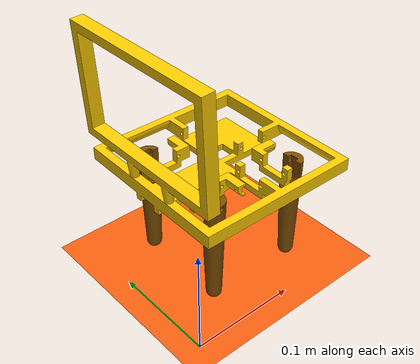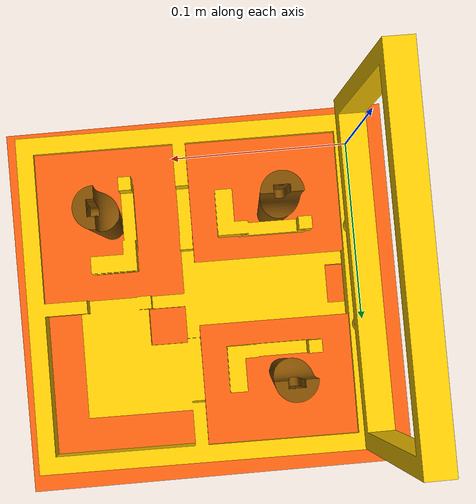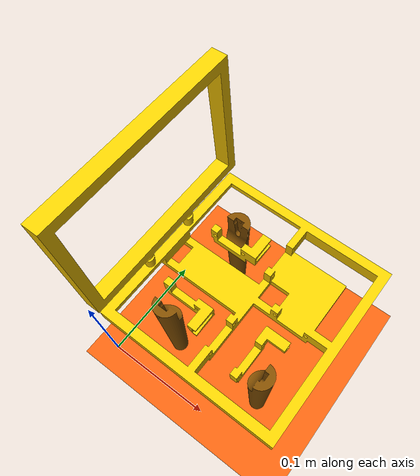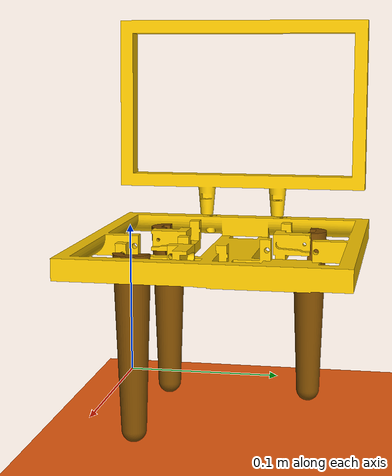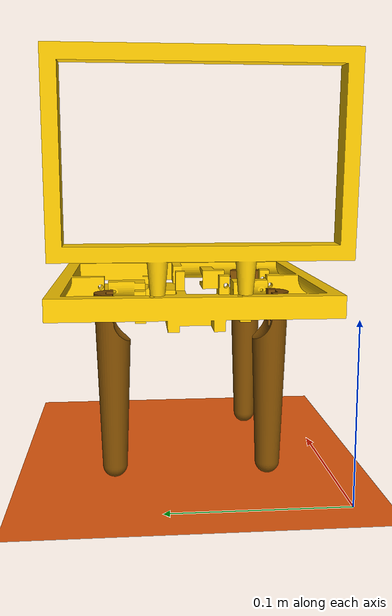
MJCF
<mujoco model="chair">
  <default>
    <joint armature="0.001" limited="true"/>
    <geom condim="3" density="175.5" margin="0.01" rgba="0.97 0.38 0.06 1" contype="0" conaffinity="1"/>
  </default>

  <compiler inertiafromgeom="true" angle="radian"/>

  <option timestep="0.016" iterations="50" tolerance="1e-10" solver="Newton" jacobian="dense" cone="pyramidal"/>
	<option noslip_iterations="3"/>

  <size nconmax="50" njmax="200" nstack="10000"/>
  <visual>
      <map force="0.1" zfar="30"/>
      <rgba haze="0.15 0.25 0.35 1"/>
      <quality shadowsize="2048"/>
      <global offwidth="800" offheight="800"/>
  </visual>

  <asset>
		<texture name="texplane" type="2d" builtin="checker" rgb1=".8 .8 .8" rgb2=".6 .6 .6" width="512" height="512" mark="cross" markrgb=".8 .8 .8"/>
		<material name="matplane" reflectance="0.3" texture="texplane" texrepeat="1 1" texuniform="true"/>
		<mesh name="face" scale="1e-3 1e-3 1e-3" file="./mesh/face_dummy.STL"/>
		<mesh name="leg1" scale="1e-3 1e-3 1e-3" file="./mesh/main-leg-4.STL"/>
		<mesh name="bracket1" scale="1e-3 1e-3 1e-3" file="./mesh/main-axis-3.STL"/>
		<mesh name="leg2" scale="1e-3 1e-3 1e-3" file="./mesh/main-leg-2.STL"/>
		<mesh name="bracket2" scale="1e-3 1e-3 1e-3" file="./mesh/main-axis-1.STL"/>
		<mesh name="leg3" scale="1e-3 1e-3 1e-3" file="./mesh/main-leg-3.STL"/>
		<mesh name="bracket3" scale="1e-3 1e-3 1e-3" file="./mesh/main-axis_mirror-1.STL"/>
		<mesh name="seat" scale="1e-3 1e-3 1e-3" file="./mesh/main-seat-1.STL"/>
  </asset>

  <worldbody>
		<geom name="floor" pos="0 0 0" size="0 0 .25" type="plane" material="matplane" contype="1" conaffinity="0"/>

    <light directional="false" diffuse=".2 .2 .2" specular="0 0 0" pos="0 0 5" dir="0 0 -1" castshadow="false"/>
    <light mode="targetbodycom" target="chair" directional="false" diffuse=".8 .8 .8" specular="0.3 0.3 0.3" pos="0 0 4.0" dir="0 0 -1"/>

		<body name="dummy" pos="0.095 0.0785 0.10365">
			<freejoint name="root"/>
		  <body name="chair" pos="-0.095 -0.0785 -0.10365">
		  	<geom name="seat" type="mesh" mesh="seat" rgba="1 .8 0 1"/>
		    <geom name="face" type="mesh" mesh="face" euler="0 3.1 -1.57" pos="0.018 0.157 0.235" rgba="1 .8 0 1"/>

		  	<body>
		  		<geom name="bracket1" type="mesh" mesh="bracket1" rgba="1 .8 0 1"/>
		  		<joint name="joint2" type="hinge" axis="0 1 0" damping=".010" pos=".13494 .06759 .10365" limited="true" range="-0.872665 0.872665"/>

		  	  <body>
		  				<geom name="leg1" type="mesh" mesh="leg1" rgba=".5 .3 0 1"/>
		  	  	<joint name="joint1" type="hinge" axis="-1 0 0" damping=".010" pos=".13494 .0369 .10365" limited="true" range="-0.872665 0.872665"/>
		  	  </body>
		  	</body>

		  	<body>
		  		<geom name="bracket2" type="mesh" mesh="bracket2" rgba="1 .8 0 1"/>
		  		<joint name="joint4" type="hinge" axis="1 0 0" damping=".010" pos=".07903 .0369 .10365" limited="true" range="-0.872665 0.872665"/>

		  	  <body>
		  				<geom name="leg2" type="mesh" mesh="leg2" rgba=".5 .3 0 1"/>
		  	  	<joint name="joint3" type="hinge" axis="0 1 0" damping=".010" pos=".04751 .0369 .10365" limited="true" range="-0.872665 0.872665"/>
		  	  </body>
		  	</body>

		  	<body>
		  		<geom name="bracket3" type="mesh" mesh="bracket3" rgba="1 .8 0 1"/>
		  		<joint name="joint6" type="hinge" axis="1 0 0" damping=".010" pos=".07903 .12513 .10365" limited="true" range="-0.872665 0.872665"/>

		  	  <body>
		  				<geom name="leg3" type="mesh" mesh="leg3" rgba=".5 .3 0 1"/>
		  	  	<joint name="joint5" type="hinge" axis="0 -1 0" damping=".010" pos=".04751 .12513 .10365" limited="true" range="-0.872665 0.872665"/>
		  	  </body>
		  	</body>

		  </body>
		</body>
  </worldbody>

  <actuator>
    <position name="joint1" joint="joint1" kp="40" ctrllimited="true" ctrlrange="-0.872665 0.872665" forcelimited="true" forcerange="-0.3 0.3"/>
  	<position name="joint2" joint="joint2" kp="40" ctrllimited="true" ctrlrange="-0.872665 0.872665" forcelimited="true" forcerange="-0.3 0.3"/>
  	<position name="joint3" joint="joint3" kp="40" ctrllimited="true" ctrlrange="-0.872665 0.872665" forcelimited="true" forcerange="-0.3 0.3"/>
  	<position name="joint4" joint="joint4" kp="40" ctrllimited="true" ctrlrange="-0.872665 0.872665" forcelimited="true" forcerange="-0.3 0.3"/>
  	<position name="joint5" joint="joint5" kp="40" ctrllimited="true" ctrlrange="-0.872665 0.872665" forcelimited="true" forcerange="-0.3 0.3"/>
  	<position name="joint6" joint="joint6" kp="40" ctrllimited="true" ctrlrange="-0.872665 0.872665" forcelimited="true" forcerange="-0.3 0.3"/>
  </actuator>

</mujoco>
